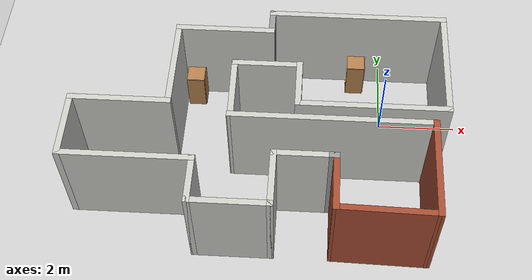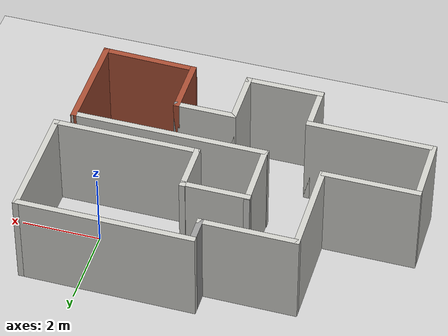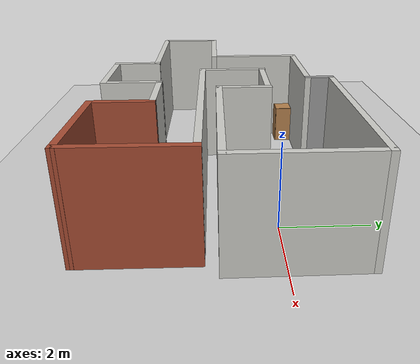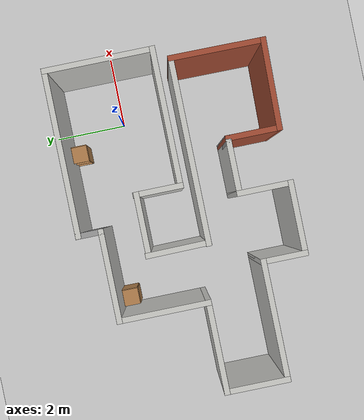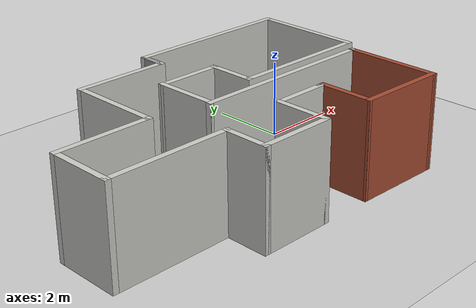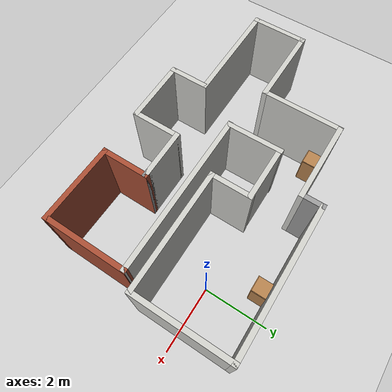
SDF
<sdf version="1.6">
 <world name="default">
  <model name="ground_plane">
   <static>1</static>
   <link name="link">
    <collision name="collision">
     <geometry><plane><normal>0 0 1</normal><size>100 100</size></plane></geometry>
     <surface><friction><ode><mu>100</mu><mu2>50</mu2></ode></friction></surface>
    </collision>
    <visual name="visual">
     <cast_shadows>0</cast_shadows>
     <geometry><plane><normal>0 0 1</normal><size>100 100</size></plane></geometry>
     <material>
      <script><uri>file://media/materials/scripts/gazebo.material</uri><name>Gazebo/Grey</name></script>
     </material>
    </visual>
   </link>
  </model>
  <model name="little_maze">
   <pose>-3.085 -1.21081 0 0 -0 0</pose>
   <link name="Wall_0">
    <collision name="Wall_0_Collision">
     <geometry><box><size>2.45054 0.15 2.5</size></box></geometry>
     <pose>0 0 1.25 0 -0 0</pose>
    </collision>
    <visual name="Wall_0_Visual">
     <pose>0 0 1.25 0 -0 0</pose>
     <geometry><box><size>2.45054 0.15 2.5</size></box></geometry>
     <material>
      <script><uri>file://media/materials/scripts/gazebo.material</uri><name>Gazebo/Bricks</name></script>
      <ambient>1 1 1 1</ambient>
     </material>
    </visual>
    <pose>3.025 -2.82419 0 0 0 -0.021736</pose>
   </link>
   <link name="Wall_1">
    <collision name="Wall_1_Collision">
     <geometry><box><size>2.58751 0.15 2.5</size></box></geometry>
     <pose>0 0 1.25 0 -0 0</pose>
    </collision>
    <visual name="Wall_1_Visual">
     <pose>0 0 1.25 0 -0 0</pose>
     <geometry><box><size>2.58751 0.15 2.5</size></box></geometry>
     <material>
      <script><uri>file://media/materials/scripts/gazebo.material</uri><name>Gazebo/Bricks</name></script>
      <ambient>1 1 1 1</ambient>
     </material>
    </visual>
    <pose>4.18375 -1.63047 0 0 -0 1.56362</pose>
   </link>
   <link name="Wall_10">
    <collision name="Wall_10_Collision">
     <geometry><box><size>0.75 0.15 2.5</size></box></geometry>
     <pose>0 0 1.25 0 -0 0</pose>
    </collision>
    <visual name="Wall_10_Visual">
     <pose>0 0 1.25 0 -0 0</pose>
     <geometry><box><size>0.75 0.15 2.5</size></box></geometry>
     <material>
      <script><uri>file://media/materials/scripts/gazebo.material</uri><name>Gazebo/Grey</name></script>
      <ambient>1 1 1 1</ambient>
     </material>
    </visual>
    <pose>0.175 2.55081 0 0 0 -1.5708</pose>
   </link>
   <link name="Wall_11">
    <collision name="Wall_11_Collision">
     <geometry><box><size>2.5 0.15 2.5</size></box></geometry>
     <pose>0 0 1.25 0 -0 0</pose>
    </collision>
    <visual name="Wall_11_Visual">
     <pose>0 0 1.25 0 -0 0</pose>
     <geometry><box><size>2.5 0.15 2.5</size></box></geometry>
     <material>
      <script><uri>file://media/materials/scripts/gazebo.material</uri><name>Gazebo/CeilingTiled</name></script>
      <ambient>1 1 1 1</ambient>
     </material>
    </visual>
    <pose>-1 2.25081 0 0 -0 3.14159</pose>
   </link>
   <link name="Wall_12">
    <collision name="Wall_12_Collision">
     <geometry><box><size>2.5 0.15 2.5</size></box></geometry>
     <pose>0 0 1.25 0 -0 0</pose>
    </collision>
    <visual name="Wall_12_Visual">
     <pose>0 0 1.25 0 -0 0</pose>
     <geometry><box><size>2.5 0.15 2.5</size></box></geometry>
     <material>
      <script><uri>file://media/materials/scripts/gazebo.material</uri><name>Gazebo/CeilingTiled</name></script>
      <ambient>1 1 1 1</ambient>
     </material>
    </visual>
    <pose>-2.175 1.07581 0 0 0 -1.5708</pose>
   </link>
   <link name="Wall_14">
    <collision name="Wall_14_Collision">
     <geometry><box><size>2.5 0.15 2.5</size></box></geometry>
     <pose>0 0 1.25 0 -0 0</pose>
    </collision>
    <visual name="Wall_14_Visual">
     <pose>0 0 1.25 0 -0 0</pose>
     <geometry><box><size>2.5 0.15 2.5</size></box></geometry>
     <material>
      <script><uri>file://media/materials/scripts/gazebo.material</uri><name>Gazebo/CeilingTiled</name></script>
      <ambient>1 1 1 1</ambient>
     </material>
    </visual>
    <pose>-3.35 -0.099194 0 0 -0 3.14159</pose>
   </link>
   <link name="Wall_15">
    <collision name="Wall_15_Collision">
     <geometry><box><size>1.75 0.15 2.5</size></box></geometry>
     <pose>0 0 1.25 0 -0 0</pose>
    </collision>
    <visual name="Wall_15_Visual">
     <pose>0 0 1.25 0 -0 0</pose>
     <geometry><box><size>1.75 0.15 2.5</size></box></geometry>
     <material>
      <script><uri>file://media/materials/scripts/gazebo.material</uri><name>Gazebo/CeilingTiled</name></script>
      <ambient>1 1 1 1</ambient>
     </material>
    </visual>
    <pose>-4.525 -0.899194 0 0 0 -1.5708</pose>
   </link>
   <link name="Wall_16">
    <collision name="Wall_16_Collision">
     <geometry><box><size>3.25 0.15 2.5</size></box></geometry>
     <pose>0 0 1.25 0 -0 0</pose>
    </collision>
    <visual name="Wall_16_Visual">
     <pose>0 0 1.25 0 -0 0</pose>
     <geometry><box><size>3.25 0.15 2.5</size></box></geometry>
     <material>
      <script><uri>file://media/materials/scripts/gazebo.material</uri><name>Gazebo/CeilingTiled</name></script>
      <ambient>1 1 1 1</ambient>
     </material>
    </visual>
    <pose>-2.975 -1.69919 0 0 -0 0</pose>
   </link>
   <link name="Wall_17">
    <collision name="Wall_17_Collision">
     <geometry><box><size>1.25 0.15 2.5</size></box></geometry>
     <pose>0 0 1.25 0 -0 0</pose>
    </collision>
    <visual name="Wall_17_Visual">
     <pose>0 0 1.25 0 -0 0</pose>
     <geometry><box><size>1.25 0.15 2.5</size></box></geometry>
     <material>
      <script><uri>file://media/materials/scripts/gazebo.material</uri><name>Gazebo/CeilingTiled</name></script>
      <ambient>1 1 1 1</ambient>
     </material>
    </visual>
    <pose>-1.425 -2.24919 0 0 0 -1.5708</pose>
   </link>
   <link name="Wall_18">
    <collision name="Wall_18_Collision">
     <geometry><box><size>2 0.15 2.5</size></box></geometry>
     <pose>0 0 1.25 0 -0 0</pose>
    </collision>
    <visual name="Wall_18_Visual">
     <pose>0 0 1.25 0 -0 0</pose>
     <geometry><box><size>2 0.15 2.5</size></box></geometry>
     <material>
      <script><uri>file://media/materials/scripts/gazebo.material</uri><name>Gazebo/CeilingTiled</name></script>
      <ambient>1 1 1 1</ambient>
     </material>
    </visual>
    <pose>-0.5 -2.79919 0 0 -0 0</pose>
   </link>
   <link name="Wall_19">
    <collision name="Wall_19_Collision">
     <geometry><box><size>1.5 0.15 2.5</size></box></geometry>
     <pose>0 0 1.25 0 -0 0</pose>
    </collision>
    <visual name="Wall_19_Visual">
     <pose>0 0 1.25 0 -0 0</pose>
     <geometry><box><size>1.5 0.15 2.5</size></box></geometry>
     <material>
      <script><uri>file://media/materials/scripts/gazebo.material</uri><name>Gazebo/CeilingTiled</name></script>
      <ambient>1 1 1 1</ambient>
     </material>
    </visual>
    <pose>0.425 -2.12419 0 0 -0 1.5708</pose>
   </link>
   <link name="Wall_2">
    <collision name="Wall_2_Collision">
     <geometry><box><size>5 0.15 2.5</size></box></geometry>
     <pose>0 0 1.25 0 -0 0</pose>
    </collision>
    <visual name="Wall_2_Visual">
     <pose>0 0 1.25 0 -0 0</pose>
     <geometry><box><size>5 0.15 2.5</size></box></geometry>
     <material>
      <script><uri>file://media/materials/scripts/gazebo.material</uri><name>Gazebo/CeilingTiled</name></script>
      <ambient>1 1 1 1</ambient>
     </material>
    </visual>
    <pose>1.75 -0.411744 0 0 -0 3.14159</pose>
   </link>
   <link name="Wall_20">
    <collision name="Wall_20_Collision">
     <geometry><box><size>1.5 0.15 2.5</size></box></geometry>
     <pose>0 0 1.25 0 -0 0</pose>
    </collision>
    <visual name="Wall_20_Visual">
     <pose>0 0 1.25 0 -0 0</pose>
     <geometry><box><size>1.5 0.15 2.5</size></box></geometry>
     <material>
      <script><uri>file://media/materials/scripts/gazebo.material</uri><name>Gazebo/CeilingTiled</name></script>
      <ambient>1 1 1 1</ambient>
     </material>
    </visual>
    <pose>1.1 -1.44919 0 0 -0 0</pose>
   </link>
   <link name="Wall_21">
    <collision name="Wall_21_Collision">
     <geometry><box><size>0.25 0.15 2.5</size></box></geometry>
     <pose>0 0 1.25 0 -0 0</pose>
    </collision>
    <visual name="Wall_21_Visual">
     <pose>0 0 1.25 0 -0 0</pose>
     <geometry><box><size>0.25 0.15 2.5</size></box></geometry>
     <material>
      <script><uri>file://media/materials/scripts/gazebo.material</uri><name>Gazebo/Grey</name></script>
      <ambient>1 1 1 1</ambient>
     </material>
    </visual>
    <pose>1.825 -1.44919 0 0 -0 0</pose>
   </link>
   <link name="Wall_22">
    <collision name="Wall_22_Collision">
     <geometry><box><size>1.5 0.15 2.5</size></box></geometry>
     <pose>0 0 1.25 0 -0 0</pose>
    </collision>
    <visual name="Wall_22_Visual">
     <pose>0 0 1.25 0 -0 0</pose>
     <geometry><box><size>1.5 0.15 2.5</size></box></geometry>
     <material>
      <script><uri>file://media/materials/scripts/gazebo.material</uri><name>Gazebo/Bricks</name></script>
      <ambient>1 1 1 1</ambient>
     </material>
    </visual>
    <pose>1.875 -2.12419 0 0 0 -1.5708</pose>
   </link>
   <link name="Wall_3">
    <collision name="Wall_3_Collision">
     <geometry><box><size>1.74496 0.15 2.5</size></box></geometry>
     <pose>0 0 1.25 0 -0 0</pose>
    </collision>
    <visual name="Wall_3_Visual">
     <pose>0 0 1.25 0 -0 0</pose>
     <geometry><box><size>1.74496 0.15 2.5</size></box></geometry>
     <material>
      <script><uri>file://media/materials/scripts/gazebo.material</uri><name>Gazebo/CeilingTiled</name></script>
      <ambient>1 1 1 1</ambient>
     </material>
    </visual>
    <pose>-0.666255 0.385687 0 0 -0 1.58176</pose>
   </link>
   <link name="Wall_4">
    <collision name="Wall_4_Collision">
     <geometry><box><size>1.75 0.15 2.5</size></box></geometry>
     <pose>0 0 1.25 0 -0 0</pose>
    </collision>
    <visual name="Wall_4_Visual">
     <pose>0 0 1.25 0 -0 0</pose>
     <geometry><box><size>1.75 0.15 2.5</size></box></geometry>
     <material>
      <script><uri>file://media/materials/scripts/gazebo.material</uri><name>Gazebo/CeilingTiled</name></script>
      <ambient>1 1 1 1</ambient>
     </material>
    </visual>
    <pose>0.125 1.16563 0 0 -0 0</pose>
   </link>
   <link name="Wall_5">
    <collision name="Wall_5_Collision">
     <geometry><box><size>1.33231 0.15 2.5</size></box></geometry>
     <pose>0 0 1.25 0 -0 0</pose>
    </collision>
    <visual name="Wall_5_Visual">
     <pose>0 0 1.25 0 -0 0</pose>
     <geometry><box><size>1.33231 0.15 2.5</size></box></geometry>
     <material>
      <script><uri>file://media/materials/scripts/gazebo.material</uri><name>Gazebo/CeilingTiled</name></script>
      <ambient>1 1 1 1</ambient>
     </material>
    </visual>
    <pose>0.925 0.591962 0 0 0 -1.5708</pose>
   </link>
   <link name="Wall_6">
    <collision name="Wall_6_Collision">
     <geometry><box><size>3.75 0.15 2.5</size></box></geometry>
     <pose>0 0 1.25 0 -0 0</pose>
    </collision>
    <visual name="Wall_6_Visual">
     <pose>0 0 1.25 0 -0 0</pose>
     <geometry><box><size>3.75 0.15 2.5</size></box></geometry>
     <material>
      <script><uri>file://media/materials/scripts/gazebo.material</uri><name>Gazebo/CeilingTiled</name></script>
      <ambient>1 1 1 1</ambient>
     </material>
    </visual>
    <pose>2.725 0.000806 0 0 -0 0</pose>
   </link>
   <link name="Wall_7">
    <collision name="Wall_7_Collision">
     <geometry><box><size>3 0.15 2.5</size></box></geometry>
     <pose>0 0 1.25 0 -0 0</pose>
    </collision>
    <visual name="Wall_7_Visual">
     <pose>0 0 1.25 0 -0 0</pose>
     <geometry><box><size>3 0.15 2.5</size></box></geometry>
     <material>
      <script><uri>file://media/materials/scripts/gazebo.material</uri><name>Gazebo/CeilingTiled</name></script>
      <ambient>1 1 1 1</ambient>
     </material>
    </visual>
    <pose>4.525 1.42581 0 0 -0 1.5708</pose>
   </link>
   <link name="Wall_9">
    <collision name="Wall_9_Collision">
     <geometry><box><size>4.5 0.15 2.5</size></box></geometry>
     <pose>0 0 1.25 0 -0 0</pose>
    </collision>
    <visual name="Wall_9_Visual">
     <pose>0 0 1.25 0 -0 0</pose>
     <geometry><box><size>4.5 0.15 2.5</size></box></geometry>
     <material>
      <script><uri>file://media/materials/scripts/gazebo.material</uri><name>Gazebo/CeilingTiled</name></script>
      <ambient>1 1 1 1</ambient>
     </material>
    </visual>
    <pose>2.35 2.85081 0 0 -0 3.14159</pose>
   </link>
   <static>1</static>
  </model>
  <model name="cabinet_0">
   <static>1</static>
   <link name="cabinet_bottom_plate">
    <inertial>
     <pose>0 0 -1 0 -0 0</pose>
     <inertia><ixx>2.05</ixx><ixy>0</ixy><ixz>0</ixz><iyy>2.05</iyy><iyz>0</iyz><izz>2.05</izz></inertia>
     <mass>25</mass>
    </inertial>
    <collision name="cabinet_bottom_plate_geom">
     <pose>0 0 0.01 0 -0 0</pose>
     <geometry><box><size>0.45 0.45 0.02</size></box></geometry>
    </collision>
    <visual name="cabinet_bottom_plate_geom_visual">
     <pose>0 0 0.01 0 -0 0</pose>
     <geometry><box><size>0.45 0.45 0.02</size></box></geometry>
     <material>
      <script><uri>file://media/materials/scripts/gazebo.material</uri><name>Gazebo/Wood</name></script>
     </material>
    </visual>
    <collision name="cabinet_bottom_plate_geom_cabinet_back_plate">
     <pose>0.235 0 0.51 0 -0 0</pose>
     <geometry><box><size>0.02 0.45 1.02</size></box></geometry>
    </collision>
    <visual name="cabinet_bottom_plate_geom_cabinet_back_plate_visual">
     <pose>0.235 0 0.51 0 -0 0</pose>
     <geometry><box><size>0.02 0.45 1.02</size></box></geometry>
     <material>
      <script><uri>file://media/materials/scripts/gazebo.material</uri><name>Gazebo/Wood</name></script>
     </material>
    </visual>
    <collision name="cabinet_bottom_plate_geom_cabinet_left_plate">
     <pose>0 0.235 0.51 0 -0 0</pose>
     <geometry><box><size>0.45 0.02 1.02</size></box></geometry>
    </collision>
    <visual name="cabinet_bottom_plate_geom_cabinet_left_plate_visual">
     <pose>0 0.235 0.51 0 -0 0</pose>
     <geometry><box><size>0.45 0.02 1.02</size></box></geometry>
     <material>
      <script><uri>file://media/materials/scripts/gazebo.material</uri><name>Gazebo/Wood</name></script>
     </material>
    </visual>
    <collision name="cabinet_bottom_plate_geom_cabinet_middle_plate">
     <pose>0 0 0.51 0 -0 0</pose>
     <geometry><box><size>0.45 0.45 0.02</size></box></geometry>
    </collision>
    <visual name="cabinet_bottom_plate_geom_cabinet_middle_plate_visual">
     <pose>0 0 0.51 0 -0 0</pose>
     <geometry><box><size>0.45 0.45 0.02</size></box></geometry>
     <material>
      <script><uri>file://media/materials/scripts/gazebo.material</uri><name>Gazebo/Wood</name></script>
     </material>
    </visual>
    <collision name="cabinet_bottom_plate_geom_cabinet_right_plate">
     <pose>0 -0.235 0.51 0 -0 0</pose>
     <geometry><box><size>0.45 0.02 1.02</size></box></geometry>
    </collision>
    <visual name="cabinet_bottom_plate_geom_cabinet_right_plate_visual">
     <pose>0 -0.235 0.51 0 -0 0</pose>
     <geometry><box><size>0.45 0.02 1.02</size></box></geometry>
     <material>
      <script><uri>file://media/materials/scripts/gazebo.material</uri><name>Gazebo/Wood</name></script>
     </material>
    </visual>
    <collision name="cabinet_bottom_plate_geom_cabinet_top_plate">
     <pose>0 0 1.01 0 -0 0</pose>
     <geometry><box><size>0.45 0.45 0.02</size></box></geometry>
    </collision>
    <visual name="cabinet_bottom_plate_geom_cabinet_top_plate_visual">
     <pose>0 0 1.01 0 -0 0</pose>
     <geometry><box><size>0.45 0.45 0.02</size></box></geometry>
     <material>
      <script><uri>file://media/materials/scripts/gazebo.material</uri><name>Gazebo/Wood</name></script>
     </material>
    </visual>
   </link>
   <pose>-4.90947 0.75115 0 0 -0 0</pose>
  </model>
  <model name="cabinet_1">
   <static>1</static>
   <link name="cabinet_bottom_plate">
    <inertial>
     <pose>0 0 -1 0 -0 0</pose>
     <inertia><ixx>2.05</ixx><ixy>0</ixy><ixz>0</ixz><iyy>2.05</iyy><iyz>0</iyz><izz>2.05</izz></inertia>
     <mass>25</mass>
    </inertial>
    <collision name="cabinet_bottom_plate_geom">
     <pose>0 0 0.01 0 -0 0</pose>
     <geometry><box><size>0.45 0.45 0.02</size></box></geometry>
    </collision>
    <visual name="cabinet_bottom_plate_geom_visual">
     <pose>0 0 0.01 0 -0 0</pose>
     <geometry><box><size>0.45 0.45 0.02</size></box></geometry>
     <material>
      <script><uri>file://media/materials/scripts/gazebo.material</uri><name>Gazebo/Wood</name></script>
     </material>
    </visual>
    <collision name="cabinet_bottom_plate_geom_cabinet_back_plate">
     <pose>0.235 0 0.51 0 -0 0</pose>
     <geometry><box><size>0.02 0.45 1.02</size></box></geometry>
    </collision>
    <visual name="cabinet_bottom_plate_geom_cabinet_back_plate_visual">
     <pose>0.235 0 0.51 0 -0 0</pose>
     <geometry><box><size>0.02 0.45 1.02</size></box></geometry>
     <material>
      <script><uri>file://media/materials/scripts/gazebo.material</uri><name>Gazebo/Wood</name></script>
     </material>
    </visual>
    <collision name="cabinet_bottom_plate_geom_cabinet_left_plate">
     <pose>0 0.235 0.51 0 -0 0</pose>
     <geometry><box><size>0.45 0.02 1.02</size></box></geometry>
    </collision>
    <visual name="cabinet_bottom_plate_geom_cabinet_left_plate_visual">
     <pose>0 0.235 0.51 0 -0 0</pose>
     <geometry><box><size>0.45 0.02 1.02</size></box></geometry>
     <material>
      <script><uri>file://media/materials/scripts/gazebo.material</uri><name>Gazebo/Wood</name></script>
     </material>
    </visual>
    <collision name="cabinet_bottom_plate_geom_cabinet_middle_plate">
     <pose>0 0 0.51 0 -0 0</pose>
     <geometry><box><size>0.45 0.45 0.02</size></box></geometry>
    </collision>
    <visual name="cabinet_bottom_plate_geom_cabinet_middle_plate_visual">
     <pose>0 0 0.51 0 -0 0</pose>
     <geometry><box><size>0.45 0.45 0.02</size></box></geometry>
     <material>
      <script><uri>file://media/materials/scripts/gazebo.material</uri><name>Gazebo/Wood</name></script>
     </material>
    </visual>
    <collision name="cabinet_bottom_plate_geom_cabinet_right_plate">
     <pose>0 -0.235 0.51 0 -0 0</pose>
     <geometry><box><size>0.45 0.02 1.02</size></box></geometry>
    </collision>
    <visual name="cabinet_bottom_plate_geom_cabinet_right_plate_visual">
     <pose>0 -0.235 0.51 0 -0 0</pose>
     <geometry><box><size>0.45 0.02 1.02</size></box></geometry>
     <material>
      <script><uri>file://media/materials/scripts/gazebo.material</uri><name>Gazebo/Wood</name></script>
     </material>
    </visual>
    <collision name="cabinet_bottom_plate_geom_cabinet_top_plate">
     <pose>0 0 1.01 0 -0 0</pose>
     <geometry><box><size>0.45 0.45 0.02</size></box></geometry>
    </collision>
    <visual name="cabinet_bottom_plate_geom_cabinet_top_plate_visual">
     <pose>0 0 1.01 0 -0 0</pose>
     <geometry><box><size>0.45 0.45 0.02</size></box></geometry>
     <material>
      <script><uri>file://media/materials/scripts/gazebo.material</uri><name>Gazebo/Wood</name></script>
     </material>
    </visual>
   </link>
   <pose>-0.681445 1.3548 0 0 -0 0</pose>
  </model>
 </world>
</sdf>
